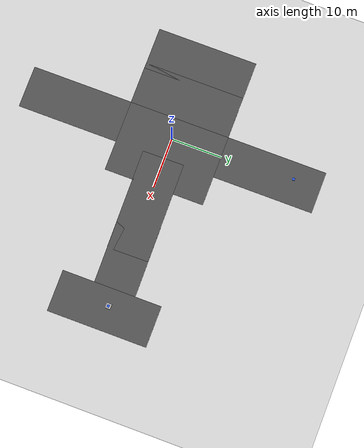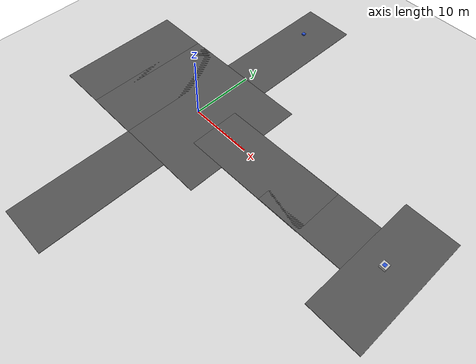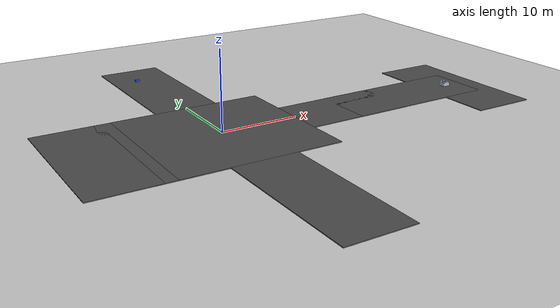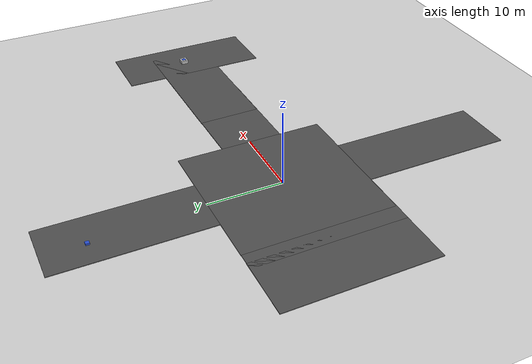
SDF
<sdf version="1.6">
 <world name="default">
  <light name="sun" type="directional">
   <pose>0 0 10 0 -0 0</pose>
   <diffuse>0.8 0.8 0.8 1</diffuse>
   <specular>0.2 0.2 0.2 1</specular>
   <attenuation>
    <range>1000</range>
    <constant>0.9</constant>
    <linear>0.01</linear>
    <quadratic>0.001</quadratic>
   </attenuation>
   <direction>-0.5 0.1 -0.9</direction>
  </light>
  <model name="ground_plane">
   <static>1</static>
   <link name="link">
    <collision name="collision">
     <geometry><plane><normal>0 0 1</normal><size>100 100</size></plane></geometry>
     <surface><friction><ode><mu>100</mu><mu2>50</mu2></ode></friction></surface>
    </collision>
    <visual name="visual">
     <cast_shadows>0</cast_shadows>
     <geometry><plane><normal>0 0 1</normal><size>100 100</size></plane></geometry>
     <material>
      <script><uri>file://media/materials/scripts/gazebo.material</uri><name>Gazebo/Grey</name></script>
     </material>
    </visual>
   </link>
  </model>
  <model name="asphalt_plane">
   <static>1</static>
   <link name="link">
    <collision name="collision"><geometry><box><size>20 20 0.1</size></box></geometry></collision>
    <visual name="visual">
     <cast_shadows>0</cast_shadows>
     <geometry><box><size>20 20 0.1</size></box></geometry>
     <material>
      <script>
       <uri>model://asphalt_plane/materials/scripts</uri>
       <uri>model://asphalt_plane/materials/textures</uri>
       <name>vrc/asphalt</name>
      </script>
     </material>
    </visual>
   </link>
  </model>
  <physics name="default_physics" default="0" type="ode">
   <ode>
    <solver>
     <type>quick</type>
     <iters>10</iters>
     <sor>1.3</sor>
     <use_dynamic_moi_rescaling>0</use_dynamic_moi_rescaling>
    </solver>
    <constraints>
     <cfm>0</cfm>
     <erp>0.2</erp>
     <contact_max_correcting_vel>100</contact_max_correcting_vel>
     <contact_surface_layer>0.001</contact_surface_layer>
    </constraints>
   </ode>
   <max_step_size>0.002</max_step_size>
   <real_time_factor>1</real_time_factor>
   <real_time_update_rate>500</real_time_update_rate>
  </physics>
  <gravity>0 0 -9.8066</gravity>
  <magnetic_field>6e-06 2.3e-05 -4.2e-05</magnetic_field>
  <atmosphere type="adiabatic"/>
  <scene><ambient>0.4 0.4 0.4 1</ambient><background>0.7 0.7 0.7 1</background><shadows>1</shadows></scene>
  <spherical_coordinates>
   <surface_model>EARTH_WGS84</surface_model>
   <latitude_deg>0</latitude_deg>
   <longitude_deg>0</longitude_deg>
   <elevation>0</elevation>
   <heading_deg>0</heading_deg>
  </spherical_coordinates>
  <model name="asphalt_plane_clone">
   <static>1</static>
   <link name="link">
    <collision name="collision"><geometry><box><size>8.31106 20 0.1</size></box></geometry></collision>
    <visual name="visual">
     <cast_shadows>0</cast_shadows>
     <geometry><box><size>8.31106 20 0.1</size></box></geometry>
     <material>
      <script>
       <uri>model://asphalt_plane/materials/scripts</uri>
       <uri>model://asphalt_plane/materials/textures</uri>
       <name>vrc/asphalt</name>
      </script>
     </material>
    </visual>
   </link>
   <pose>-0.008163 -19.9899 0 0 -0 0</pose>
  </model>
  <model name="asphalt_plane_clone_0">
   <static>1</static>
   <link name="link">
    <collision name="collision"><geometry><box><size>8.31106 20 0.1</size></box></geometry></collision>
    <visual name="visual">
     <cast_shadows>0</cast_shadows>
     <geometry><box><size>8.31106 20 0.1</size></box></geometry>
     <material>
      <script>
       <uri>model://asphalt_plane/materials/scripts</uri>
       <uri>model://asphalt_plane/materials/textures</uri>
       <name>vrc/asphalt</name>
      </script>
     </material>
    </visual>
   </link>
   <pose>-0.001754 20 0 0 -0 0</pose>
  </model>
  <model name="asphalt_plane_clone_1">
   <static>1</static>
   <link name="link">
    <collision name="collision"><geometry><box><size>8.31106 20 0.1</size></box></geometry></collision>
    <visual name="visual">
     <cast_shadows>0</cast_shadows>
     <geometry><box><size>8.31106 20 0.1</size></box></geometry>
     <material>
      <script>
       <uri>model://asphalt_plane/materials/scripts</uri>
       <uri>model://asphalt_plane/materials/textures</uri>
       <name>vrc/asphalt</name>
      </script>
     </material>
    </visual>
   </link>
   <pose>-8.30014 -0.034278 0 0 -0 0</pose>
  </model>
  <model name="asphalt_plane_clone_1_clone">
   <static>1</static>
   <link name="link">
    <collision name="collision"><geometry><box><size>8.31106 20 0.1</size></box></geometry></collision>
    <visual name="visual">
     <cast_shadows>0</cast_shadows>
     <geometry><box><size>8.31106 20 0.1</size></box></geometry>
     <material>
      <script>
       <uri>model://asphalt_plane/materials/scripts</uri>
       <uri>model://asphalt_plane/materials/textures</uri>
       <name>vrc/asphalt</name>
      </script>
     </material>
    </visual>
   </link>
   <pose>-15.632 -0.01132 0 0 -0 0</pose>
  </model>
  <model name="asphalt_plane_clone_1_clone_0">
   <static>1</static>
   <link name="link">
    <collision name="collision"><geometry><box><size>8.31106 20 0.1</size></box></geometry></collision>
    <visual name="visual">
     <cast_shadows>0</cast_shadows>
     <geometry><box><size>8.31106 20 0.1</size></box></geometry>
     <material>
      <script>
       <uri>model://asphalt_plane/materials/scripts</uri>
       <uri>model://asphalt_plane/materials/textures</uri>
       <name>vrc/asphalt</name>
      </script>
     </material>
    </visual>
   </link>
   <pose>14.0208 -0.170453 0 0 0 -1.55871</pose>
  </model>
  <model name="asphalt_plane_clone_1_clone_0_clone">
   <static>1</static>
   <link name="link">
    <collision name="collision"><geometry><box><size>8.31106 20 0.1</size></box></geometry></collision>
    <visual name="visual">
     <cast_shadows>0</cast_shadows>
     <geometry><box><size>8.31106 20 0.1</size></box></geometry>
     <material>
      <script>
       <uri>model://asphalt_plane/materials/scripts</uri>
       <uri>model://asphalt_plane/materials/textures</uri>
       <name>vrc/asphalt</name>
      </script>
     </material>
    </visual>
   </link>
   <pose>27.1149 0.022549 0 0 0 -1.55871</pose>
  </model>
  <model name="asphalt_plane_clone_1_clone_1">
   <static>1</static>
   <link name="link">
    <collision name="collision"><geometry><box><size>8.31106 20 0.1</size></box></geometry></collision>
    <visual name="visual">
     <cast_shadows>0</cast_shadows>
     <geometry><box><size>8.31106 20 0.1</size></box></geometry>
     <material>
      <script>
       <uri>model://asphalt_plane/materials/scripts</uri>
       <uri>model://asphalt_plane/materials/textures</uri>
       <name>vrc/asphalt</name>
      </script>
     </material>
    </visual>
   </link>
   <pose>35.2662 -0.468727 0 0 -0 0</pose>
  </model>
  <model name="apriltag">
   <static>0</static>
   <link name="link">
    <inertial>
     <mass>20</mass>
     <inertia><ixx>1</ixx><ixy>0</ixy><ixz>0</ixz><iyy>1</iyy><iyz>0</iyz><izz>1</izz></inertia>
    </inertial>
    <collision name="collision">
     <geometry><box><size>1 1 0.5</size></box></geometry>
     <surface><friction><ode><mu>100</mu><mu2>50</mu2></ode></friction></surface>
    </collision>
    <visual name="visual">
     <cast_shadows>0</cast_shadows>
     <geometry><box><size>1 1 0.5</size></box></geometry>
     <material><script><name>AprilTag/Image</name><uri>__default__</uri></script></material>
    </visual>
   </link>
   <pose>34.5938 0.126966 0.3 1e-06 -4e-06 -0.00627</pose>
  </model>
  <model name="blue_box">
   <link name="link">
    <inertial>
     <mass>1</mass>
     <inertia>
      <ixx>0.166667</ixx>
      <ixy>0</ixy>
      <ixz>0</ixz>
      <iyy>0.166667</iyy>
      <iyz>0</iyz>
      <izz>0.166667</izz>
     </inertia>
    </inertial>
    <visual name="visual">
     <geometry><box><size>0.5 0.5 0.25</size></box></geometry>
     <material>
      <script><name>Gazebo/Blue</name><uri>__default__</uri></script>
      <ambient>0 0 1 1</ambient>
      <diffuse>0 0 1 1</diffuse>
      <specular>0.1 0.1 0.1 1</specular>
      <emissive>0 0 0 1</emissive>
      <shader type="vertex"><normal_map>__default__</normal_map></shader>
     </material>
    </visual>
    <collision name="collision">
     <geometry><box><size>0.5 0.5 0.25</size></box></geometry>
     <surface>
      <friction>
       <ode><mu>1</mu><mu2>1</mu2><fdir1>0 0 0</fdir1><slip1>0</slip1><slip2>0</slip2></ode>
       <torsional>
        <coefficient>1</coefficient>
        <patch_radius>0</patch_radius>
        <surface_radius>0</surface_radius>
        <use_patch_radius>1</use_patch_radius>
        <ode><slip>0</slip></ode>
       </torsional>
      </friction>
      <bounce><restitution_coefficient>0</restitution_coefficient><threshold>1e+06</threshold></bounce>
      <contact>
       <collide_without_contact>0</collide_without_contact>
       <collide_without_contact_bitmask>1</collide_without_contact_bitmask>
       <collide_bitmask>1</collide_bitmask>
       <ode>
        <soft_cfm>0</soft_cfm>
        <soft_erp>0.2</soft_erp>
        <kp>1e+13</kp>
        <kd>1</kd>
        <max_vel>0.01</max_vel>
        <min_depth>0</min_depth>
       </ode>
       <bullet>
        <split_impulse>1</split_impulse>
        <split_impulse_penetration_threshold>-0.01</split_impulse_penetration_threshold>
        <soft_cfm>0</soft_cfm>
        <soft_erp>0.2</soft_erp>
        <kp>1e+13</kp>
        <kd>1</kd>
       </bullet>
      </contact>
     </surface>
    </collision>
   </link>
   <static>0</static>
   <pose>-0.829271 24.5566 0.175002 0 8e-06 -0.007568</pose>
  </model>
  <model name="blue_box_mark">
   <link name="link">
    <pose>0 0 -0.120735 0 -0 0</pose>
    <inertial>
     <mass>1</mass>
     <inertia>
      <ixx>0.166667</ixx>
      <ixy>0</ixy>
      <ixz>0</ixz>
      <iyy>0.166667</iyy>
      <iyz>0</iyz>
      <izz>0.166667</izz>
     </inertia>
    </inertial>
    <visual name="visual">
     <geometry><box><size>0.5 0.5 0.01</size></box></geometry>
     <material>
      <script><name>Gazebo/Blue</name><uri>__default__</uri></script>
      <ambient>0 0 1 1</ambient>
      <diffuse>0 0 1 1</diffuse>
      <specular>0.1 0.1 0.1 1</specular>
      <emissive>0 0 0 1</emissive>
      <shader type="vertex"><normal_map>__default__</normal_map></shader>
     </material>
    </visual>
    <collision name="collision">
     <geometry><box><size>0.5 0.5 0.01</size></box></geometry>
     <surface>
      <friction>
       <ode><mu>1</mu><mu2>1</mu2><fdir1>0 0 0</fdir1><slip1>0</slip1><slip2>0</slip2></ode>
       <torsional>
        <coefficient>1</coefficient>
        <patch_radius>0</patch_radius>
        <surface_radius>0</surface_radius>
        <use_patch_radius>1</use_patch_radius>
        <ode><slip>0</slip></ode>
       </torsional>
      </friction>
      <bounce><restitution_coefficient>0</restitution_coefficient><threshold>1e+06</threshold></bounce>
      <contact>
       <collide_without_contact>0</collide_without_contact>
       <collide_without_contact_bitmask>1</collide_without_contact_bitmask>
       <collide_bitmask>1</collide_bitmask>
       <ode>
        <soft_cfm>0</soft_cfm>
        <soft_erp>0.2</soft_erp>
        <kp>1e+13</kp>
        <kd>1</kd>
        <max_vel>0.01</max_vel>
        <min_depth>0</min_depth>
       </ode>
       <bullet>
        <split_impulse>1</split_impulse>
        <split_impulse_penetration_threshold>-0.01</split_impulse_penetration_threshold>
        <soft_cfm>0</soft_cfm>
        <soft_erp>0.2</soft_erp>
        <kp>1e+13</kp>
        <kd>1</kd>
       </bullet>
      </contact>
     </surface>
    </collision>
   </link>
   <static>0</static>
   <pose>34.5932 0.114135 0.675728 0 2.7e-05 0.00981</pose>
  </model>
 </world>
</sdf>
